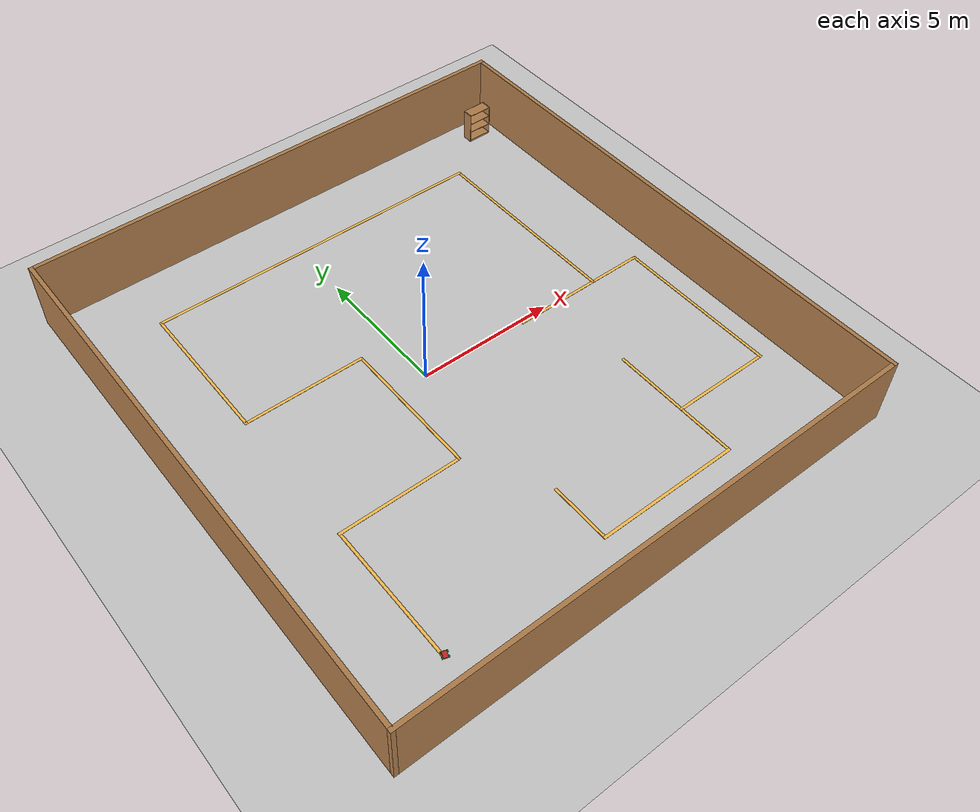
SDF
<sdf version="1.7">
 <world name="default">
  <light name="sun" type="directional">
   <pose>0 0 10 0 -0 0</pose>
   <diffuse>0.8 0.8 0.8 1</diffuse>
   <specular>0.2 0.2 0.2 1</specular>
   <attenuation>
    <range>1000</range>
    <constant>0.9</constant>
    <linear>0.01</linear>
    <quadratic>0.001</quadratic>
   </attenuation>
   <direction>-0.5 0.1 -0.9</direction>
   <spot><inner_angle>0</inner_angle><outer_angle>0</outer_angle><falloff>0</falloff></spot>
  </light>
  <model name="ground_plane">
   <static>1</static>
   <link name="link">
    <collision name="collision">
     <geometry><plane><normal>0 0 1</normal><size>100 100</size></plane></geometry>
     <surface><friction><ode><mu>100</mu><mu2>50</mu2></ode></friction></surface>
    </collision>
    <visual name="visual">
     <cast_shadows>0</cast_shadows>
     <geometry><plane><normal>0 0 1</normal><size>100 100</size></plane></geometry>
     <material>
      <script><uri>file://media/materials/scripts/gazebo.material</uri><name>Gazebo/Grey</name></script>
     </material>
    </visual>
   </link>
  </model>
  <gravity>0 0 -9.8</gravity>
  <magnetic_field>6e-06 2.3e-05 -4.2e-05</magnetic_field>
  <atmosphere type="adiabatic"/>
  <physics type="ode">
   <max_step_size>0.001</max_step_size>
   <real_time_factor>1</real_time_factor>
   <real_time_update_rate>1000</real_time_update_rate>
  </physics>
  <scene><ambient>0.4 0.4 0.4 1</ambient><background>0.7 0.7 0.7 1</background><shadows>1</shadows></scene>
  <audio><device>default</device></audio>
  <spherical_coordinates>
   <surface_model>EARTH_WGS84</surface_model>
   <latitude_deg>0</latitude_deg>
   <longitude_deg>0</longitude_deg>
   <elevation>0</elevation>
   <heading_deg>0</heading_deg>
  </spherical_coordinates>
  <model name="world">
   <pose>0.75234 -0.14285 0 0 -0 0</pose>
   <link name="Wall_30">
    <collision name="Wall_30_Collision">
     <geometry><box><size>19.5 0.15 2.5</size></box></geometry>
     <pose>0 0 1.25 0 -0 0</pose>
    </collision>
    <visual name="Wall_30_Visual">
     <pose>0 0 1.25 0 -0 0</pose>
     <geometry><box><size>19.5 0.15 2.5</size></box></geometry>
     <material>
      <script><uri>file://media/materials/scripts/gazebo.material</uri><name>Gazebo/Wood</name></script>
      <ambient>1 1 1 1</ambient>
     </material>
     <meta><layer>0</layer></meta>
    </visual>
    <pose>-9.175 0 0 0 -0 1.5708</pose>
   </link>
   <link name="Wall_31">
    <collision name="Wall_31_Collision">
     <geometry><box><size>18.5 0.15 2.5</size></box></geometry>
     <pose>0 0 1.25 0 -0 0</pose>
    </collision>
    <visual name="Wall_31_Visual">
     <pose>0 0 1.25 0 -0 0</pose>
     <geometry><box><size>18.5 0.15 2.5</size></box></geometry>
     <material>
      <script><uri>file://media/materials/scripts/gazebo.material</uri><name>Gazebo/Wood</name></script>
      <ambient>1 1 1 1</ambient>
     </material>
     <meta><layer>0</layer></meta>
    </visual>
    <pose>0 9.675 0 0 -0 0</pose>
   </link>
   <link name="Wall_32">
    <collision name="Wall_32_Collision">
     <geometry><box><size>19.5 0.15 2.5</size></box></geometry>
     <pose>0 0 1.25 0 -0 0</pose>
    </collision>
    <visual name="Wall_32_Visual">
     <pose>0 0 1.25 0 -0 0</pose>
     <geometry><box><size>19.5 0.15 2.5</size></box></geometry>
     <material>
      <script><uri>file://media/materials/scripts/gazebo.material</uri><name>Gazebo/Wood</name></script>
      <ambient>1 1 1 1</ambient>
     </material>
     <meta><layer>0</layer></meta>
    </visual>
    <pose>9.175 0 0 0 -0 -1.5708</pose>
   </link>
   <link name="Wall_33">
    <collision name="Wall_33_Collision">
     <geometry><box><size>18.5 0.15 2.5</size></box></geometry>
     <pose>0 0 1.25 0 -0 0</pose>
    </collision>
    <visual name="Wall_33_Visual">
     <pose>0 0 1.25 0 -0 0</pose>
     <geometry><box><size>18.5 0.15 2.5</size></box></geometry>
     <material>
      <script><uri>file://media/materials/scripts/gazebo.material</uri><name>Gazebo/Wood</name></script>
      <ambient>1 1 1 1</ambient>
     </material>
     <meta><layer>0</layer></meta>
    </visual>
    <pose>0 -9.675 0 0 -0 3.14159</pose>
   </link>
   <link name="Wall_35">
    <collision name="Wall_35_Collision">
     <geometry><box><size>4.94963 0.1 0.01</size></box></geometry>
     <pose>0 0 0.005 0 -0 0</pose>
    </collision>
    <visual name="Wall_35_Visual">
     <pose>0 0 0.005 0 -0 0</pose>
     <geometry><box><size>4.94963 0.1 0.01</size></box></geometry>
     <material>
      <script><uri>file://media/materials/scripts/gazebo.material</uri><name>Gazebo/Grey</name></script>
      <ambient>1 0.764706 0.305882 1</ambient>
     </material>
     <meta><layer>0</layer></meta>
    </visual>
    <pose>-6.28535 -5.50215 0 0 -0 1.5708</pose>
   </link>
   <link name="Wall_36">
    <collision name="Wall_36_Collision">
     <geometry><box><size>4.45 0.1 0.01</size></box></geometry>
     <pose>0 0 0.005 0 -0 0</pose>
    </collision>
    <visual name="Wall_36_Visual">
     <pose>0 0 0.005 0 -0 0</pose>
     <geometry><box><size>4.45 0.1 0.01</size></box></geometry>
     <material>
      <script><uri>file://media/materials/scripts/gazebo.material</uri><name>Gazebo/Grey</name></script>
      <ambient>1 0.764706 0.305882 1</ambient>
     </material>
     <meta><layer>0</layer></meta>
    </visual>
    <pose>-4.11034 -3.07715 0 0 -0 0</pose>
   </link>
   <link name="Wall_37">
    <collision name="Wall_37_Collision">
     <geometry><box><size>5.19963 0.1 0.01</size></box></geometry>
     <pose>0 0 0.005 0 -0 0</pose>
    </collision>
    <visual name="Wall_37_Visual">
     <pose>0 0 0.005 0 -0 0</pose>
     <geometry><box><size>5.19963 0.1 0.01</size></box></geometry>
     <material>
      <script><uri>file://media/materials/scripts/gazebo.material</uri><name>Gazebo/Grey</name></script>
      <ambient>1 0.764706 0.305882 1</ambient>
     </material>
     <meta><layer>0</layer></meta>
    </visual>
    <pose>-1.93535 -0.52715 0 0 -0 1.5708</pose>
   </link>
   <link name="Wall_38">
    <collision name="Wall_38_Collision">
     <geometry><box><size>4.44982 0.1 0.01</size></box></geometry>
     <pose>0 0 0.005 0 -0 0</pose>
    </collision>
    <visual name="Wall_38_Visual">
     <pose>0 0 0.005 0 -0 0</pose>
     <geometry><box><size>4.44982 0.1 0.01</size></box></geometry>
     <material>
      <script><uri>file://media/materials/scripts/gazebo.material</uri><name>Gazebo/Grey</name></script>
      <ambient>1 0.764706 0.305882 1</ambient>
     </material>
     <meta><layer>0</layer></meta>
    </visual>
    <pose>-4.11034 2.02285 0 0 -0 3.14159</pose>
   </link>
   <link name="Wall_39">
    <collision name="Wall_39_Collision">
     <geometry><box><size>5.44963 0.1 0.01</size></box></geometry>
     <pose>0 0 0.005 0 -0 0</pose>
    </collision>
    <visual name="Wall_39_Visual">
     <pose>0 0 0.005 0 -0 0</pose>
     <geometry><box><size>5.44963 0.1 0.01</size></box></geometry>
     <material>
      <script><uri>file://media/materials/scripts/gazebo.material</uri><name>Gazebo/Grey</name></script>
      <ambient>1 0.764706 0.305882 1</ambient>
     </material>
     <meta><layer>0</layer></meta>
    </visual>
    <pose>-6.28535 4.69785 0 0 -0 1.5708</pose>
   </link>
   <link name="Wall_40">
    <collision name="Wall_40_Collision">
     <geometry><box><size>12.7002 0.1 0.01</size></box></geometry>
     <pose>0 0 0.005 0 -0 0</pose>
    </collision>
    <visual name="Wall_40_Visual">
     <pose>0 0 0.005 0 -0 0</pose>
     <geometry><box><size>12.7002 0.1 0.01</size></box></geometry>
     <material>
      <script><uri>file://media/materials/scripts/gazebo.material</uri><name>Gazebo/Grey</name></script>
      <ambient>1 0.764706 0.305882 1</ambient>
     </material>
     <meta><layer>0</layer></meta>
    </visual>
    <pose>0.014655 7.37285 0 0 -0 0</pose>
   </link>
   <link name="Wall_41">
    <collision name="Wall_41_Collision">
     <geometry><box><size>7.41019 0.1 0.01</size></box></geometry>
     <pose>0 0 0.005 0 -0 0</pose>
    </collision>
    <visual name="Wall_41_Visual">
     <pose>0 0 0.005 0 -0 0</pose>
     <geometry><box><size>7.41019 0.1 0.01</size></box></geometry>
     <material>
      <script><uri>file://media/materials/scripts/gazebo.material</uri><name>Gazebo/Grey</name></script>
      <ambient>1 0.764706 0.305882 1</ambient>
     </material>
     <meta><layer>0</layer></meta>
    </visual>
    <pose>6.33462 3.71781 0 0 -0 -1.56533</pose>
   </link>
   <link name="Wall_44">
    <collision name="Wall_44_Collision">
     <geometry><box><size>5.95 0.1 0.01</size></box></geometry>
     <pose>0 0 0.005 0 -0 0</pose>
    </collision>
    <visual name="Wall_44_Visual">
     <pose>0 0 0.005 0 -0 0</pose>
     <geometry><box><size>5.95 0.1 0.01</size></box></geometry>
     <material>
      <script><uri>file://media/materials/scripts/gazebo.material</uri><name>Gazebo/Grey</name></script>
      <ambient>1 0.764706 0.305882 1</ambient>
     </material>
     <meta><layer>0</layer></meta>
    </visual>
    <pose>8.31466 -2.90215 0 0 -0 -1.5708</pose>
   </link>
   <link name="Wall_45">
    <collision name="Wall_45_Collision">
     <geometry><box><size>3.69982 0.1 0.01</size></box></geometry>
     <pose>0 0 0.005 0 -0 0</pose>
    </collision>
    <visual name="Wall_45_Visual">
     <pose>0 0 0.005 0 -0 0</pose>
     <geometry><box><size>3.69982 0.1 0.01</size></box></geometry>
     <material>
      <script><uri>file://media/materials/scripts/gazebo.material</uri><name>Gazebo/Grey</name></script>
      <ambient>1 0.764706 0.305882 1</ambient>
     </material>
     <meta><layer>0</layer></meta>
    </visual>
    <pose>6.51466 -5.82715 0 0 -0 3.14159</pose>
   </link>
   <link name="Wall_46">
    <collision name="Wall_46_Collision">
     <geometry><box><size>2.7 0.1 0.01</size></box></geometry>
     <pose>0 0 0.005 0 -0 0</pose>
    </collision>
    <visual name="Wall_46_Visual">
     <pose>0 0 0.005 0 -0 0</pose>
     <geometry><box><size>2.7 0.1 0.01</size></box></geometry>
     <material>
      <script><uri>file://media/materials/scripts/gazebo.material</uri><name>Gazebo/Grey</name></script>
      <ambient>1 0.764706 0.305882 1</ambient>
     </material>
     <meta><layer>0</layer></meta>
    </visual>
    <pose>4.71465 -4.52715 0 0 -0 1.5708</pose>
   </link>
   <link name="Wall_47">
    <collision name="Wall_47_Collision">
     <geometry><box><size>4.70037 0.1 0.01</size></box></geometry>
     <pose>0 0 0.005 0 -0 0</pose>
    </collision>
    <visual name="Wall_47_Visual">
     <pose>0 0 0.005 0 -0 0</pose>
     <geometry><box><size>4.70037 0.1 0.01</size></box></geometry>
     <material>
      <script><uri>file://media/materials/scripts/gazebo.material</uri><name>Gazebo/Grey</name></script>
      <ambient>1 0.764706 0.305882 1</ambient>
     </material>
     <meta><layer>0</layer></meta>
    </visual>
    <pose>4.71465 -5.52715 0 0 -0 -1.5708</pose>
   </link>
   <link name="Wall_48">
    <collision name="Wall_48_Collision">
     <geometry><box><size>5.19982 0.1 0.01</size></box></geometry>
     <pose>0 0 0.005 0 -0 0</pose>
    </collision>
    <visual name="Wall_48_Visual">
     <pose>0 0 0.005 0 -0 0</pose>
     <geometry><box><size>5.19982 0.1 0.01</size></box></geometry>
     <material>
      <script><uri>file://media/materials/scripts/gazebo.material</uri><name>Gazebo/Grey</name></script>
      <ambient>1 0.764706 0.305882 1</ambient>
     </material>
     <meta><layer>0</layer></meta>
    </visual>
    <pose>2.16466 -7.82715 0 0 -0 3.14159</pose>
   </link>
   <link name="Wall_49">
    <collision name="Wall_49_Collision">
     <geometry><box><size>2.19963 0.1 0.01</size></box></geometry>
     <pose>0 0 0.005 0 -0 0</pose>
    </collision>
    <visual name="Wall_49_Visual">
     <pose>0 0 0.005 0 -0 0</pose>
     <geometry><box><size>2.19963 0.1 0.01</size></box></geometry>
     <material>
      <script><uri>file://media/materials/scripts/gazebo.material</uri><name>Gazebo/Grey</name></script>
      <ambient>1 0.764706 0.305882 1</ambient>
     </material>
     <meta><layer>0</layer></meta>
    </visual>
    <pose>-0.385345 -6.77715 0 0 -0 1.5708</pose>
   </link>
   <link name="Wall_60">
    <collision name="Wall_60_Collision">
     <geometry><box><size>5.2 0.1 0.01</size></box></geometry>
     <pose>0 0 0.005 0 -0 0</pose>
    </collision>
    <visual name="Wall_60_Visual">
     <pose>0 0 0.005 0 -0 0</pose>
     <geometry><box><size>5.2 0.1 0.01</size></box></geometry>
     <material>
      <script><uri>file://media/materials/scripts/gazebo.material</uri><name>Gazebo/Grey</name></script>
      <ambient>1 0.764706 0.305882 1</ambient>
     </material>
     <meta><layer>0</layer></meta>
    </visual>
    <pose>5.76466 0.02285 0 0 -0 3.14159</pose>
   </link>
   <static>1</static>
  </model>
  <model name="arm_1dof">
   <link name="chassis">
    <inertial>
     <pose>0.001961 0 0.000588 0 -0 0</pose>
     <mass>0.51</mass>
     <inertia>
      <ixx>0.00105882</ixx>
      <ixy>0</ixy>
      <ixz>-2.94118e-05</ixz>
      <iyy>0.00271936</iyy>
      <iyz>0</iyz>
      <izz>0.00187721</izz>
     </inertia>
    </inertial>
    <collision name="chassis_collision_collision">
     <geometry><box><size>0.2 0.15 0.05</size></box></geometry>
    </collision>
    <collision name="chassis_fixed_joint_lump__camera_link_collision_collision_1">
     <pose>0.1 0 0.03 0 -0 0</pose>
     <geometry><box><size>0.02 0.02 0.01</size></box></geometry>
    </collision>
    <visual name="chassis_visual_visual">
     <geometry><box><size>0.2 0.15 0.05</size></box></geometry>
     <material>
      <script><name>Gazebo/Red</name><uri>file://media/materials/scripts/gazebo.material</uri></script>
     </material>
    </visual>
    <visual name="chassis_fixed_joint_lump__camera_link_visual_visual_1">
     <pose>0.1 0 0.03 0 -0 0</pose>
     <geometry><box><size>0.02 0.02 0.01</size></box></geometry>
    </visual>
    <sensor name="camera1" type="camera">
     <update_rate>30</update_rate>
     <camera name="head">
      <horizontal_fov>1.39626</horizontal_fov>
      <image><width>800</width><height>800</height><format>R8G8B8</format></image>
      <clip><near>0.02</near><far>300</far></clip>
      <noise><type>gaussian</type><mean>0</mean><stddev>0.007</stddev></noise>
     </camera>
     <plugin name="camera_controller" filename="libgazebo_ros_camera.so">
      <alwaysOn>1</alwaysOn>
      <updateRate>0.0</updateRate>
      <cameraName>robot/camera</cameraName>
      <imageTopicName>image_raw</imageTopicName>
      <cameraInfoTopicName>camera_info</cameraInfoTopicName>
      <frameName>camera_link</frameName>
      <hackBaseline>0.07</hackBaseline>
      <distortionK1>0.0</distortionK1>
      <distortionK2>0.0</distortionK2>
      <distortionK3>0.0</distortionK3>
      <distortionT1>0.0</distortionT1>
      <distortionT2>0.0</distortionT2>
     </plugin>
     <pose>0.1 0 0.03 0 -0 0</pose>
    </sensor>
   </link>
   <joint name="wheel_FL_joint" type="revolute">
    <pose relative_to="chassis">0.075 0.08 0 0 -0 0</pose>
    <parent>chassis</parent>
    <child>wheel_FL</child>
    <axis>
     <xyz>0 1 0</xyz>
     <limit><lower>-1e+16</lower><upper>1e+16</upper></limit>
     <dynamics><spring_reference>0</spring_reference><spring_stiffness>0</spring_stiffness></dynamics>
    </axis>
   </joint>
   <link name="wheel_FL">
    <pose relative_to="wheel_FL_joint">0 0 0 0 -0 0</pose>
    <inertial>
     <mass>0.025</mass>
     <inertia>
      <ixx>0.000166667</ixx>
      <ixy>0</ixy>
      <ixz>0</ixz>
      <iyy>0.000166667</iyy>
      <iyz>0</iyz>
      <izz>0.000166667</izz>
     </inertia>
    </inertial>
    <collision name="wheel_FL_collision_collision">
     <pose>0 0.015 0 1.5708 -0 0</pose>
     <geometry><cylinder><length>0.03</length><radius>0.04</radius></cylinder></geometry>
    </collision>
    <visual name="wheel_FL_visual_visual">
     <pose>0 0.015 0 1.5708 -0 0</pose>
     <geometry><cylinder><length>0.03</length><radius>0.04</radius></cylinder></geometry>
     <material>
      <script><name>Gazebo/Green</name><uri>file://media/materials/scripts/gazebo.material</uri></script>
     </material>
    </visual>
   </link>
   <joint name="wheel_FR_joint" type="revolute">
    <pose relative_to="chassis">0.075 -0.08 0 0 -0 0</pose>
    <parent>chassis</parent>
    <child>wheel_FR</child>
    <axis>
     <xyz>0 1 0</xyz>
     <limit><lower>-1e+16</lower><upper>1e+16</upper></limit>
     <dynamics><spring_reference>0</spring_reference><spring_stiffness>0</spring_stiffness></dynamics>
    </axis>
   </joint>
   <link name="wheel_FR">
    <pose relative_to="wheel_FR_joint">0 0 0 0 -0 0</pose>
    <inertial>
     <mass>0.025</mass>
     <inertia>
      <ixx>0.000166667</ixx>
      <ixy>0</ixy>
      <ixz>0</ixz>
      <iyy>0.000166667</iyy>
      <iyz>0</iyz>
      <izz>0.000166667</izz>
     </inertia>
    </inertial>
    <collision name="wheel_FR_collision_collision">
     <pose>0 -0.015 0 1.5708 -0 0</pose>
     <geometry><cylinder><length>0.03</length><radius>0.04</radius></cylinder></geometry>
    </collision>
    <visual name="wheel_FR_visual_visual">
     <pose>0 -0.015 0 1.5708 -0 0</pose>
     <geometry><cylinder><length>0.03</length><radius>0.04</radius></cylinder></geometry>
     <material>
      <script><name>Gazebo/Green</name><uri>file://media/materials/scripts/gazebo.material</uri></script>
     </material>
    </visual>
   </link>
   <joint name="wheel_RL_joint" type="revolute">
    <pose relative_to="chassis">-0.075 0.08 0 0 -0 0</pose>
    <parent>chassis</parent>
    <child>wheel_RL</child>
    <axis>
     <xyz>0 1 0</xyz>
     <limit><lower>-1e+16</lower><upper>1e+16</upper></limit>
     <dynamics><spring_reference>0</spring_reference><spring_stiffness>0</spring_stiffness></dynamics>
    </axis>
   </joint>
   <link name="wheel_RL">
    <pose relative_to="wheel_RL_joint">0 0 0 0 -0 0</pose>
    <inertial>
     <mass>0.025</mass>
     <inertia>
      <ixx>0.000166667</ixx>
      <ixy>0</ixy>
      <ixz>0</ixz>
      <iyy>0.000166667</iyy>
      <iyz>0</iyz>
      <izz>0.000166667</izz>
     </inertia>
    </inertial>
    <collision name="wheel_RL_collision_collision">
     <pose>0 0.015 0 1.5708 -0 0</pose>
     <geometry><cylinder><length>0.03</length><radius>0.04</radius></cylinder></geometry>
    </collision>
    <visual name="wheel_RL_visual_visual">
     <pose>0 0.015 0 1.5708 -0 0</pose>
     <geometry><cylinder><length>0.03</length><radius>0.04</radius></cylinder></geometry>
     <material>
      <script><name>Gazebo/Green</name><uri>file://media/materials/scripts/gazebo.material</uri></script>
     </material>
    </visual>
   </link>
   <joint name="wheel_RR_joint" type="revolute">
    <pose relative_to="chassis">-0.075 -0.08 0 0 -0 0</pose>
    <parent>chassis</parent>
    <child>wheel_RR</child>
    <axis>
     <xyz>0 1 0</xyz>
     <limit><lower>-1e+16</lower><upper>1e+16</upper></limit>
     <dynamics><spring_reference>0</spring_reference><spring_stiffness>0</spring_stiffness></dynamics>
    </axis>
   </joint>
   <link name="wheel_RR">
    <pose relative_to="wheel_RR_joint">0 0 0 0 -0 0</pose>
    <inertial>
     <mass>0.025</mass>
     <inertia>
      <ixx>0.000166667</ixx>
      <ixy>0</ixy>
      <ixz>0</ixz>
      <iyy>0.000166667</iyy>
      <iyz>0</iyz>
      <izz>0.000166667</izz>
     </inertia>
    </inertial>
    <collision name="wheel_RR_collision_collision">
     <pose>0 -0.015 0 1.5708 -0 0</pose>
     <geometry><cylinder><length>0.03</length><radius>0.04</radius></cylinder></geometry>
    </collision>
    <visual name="wheel_RR_visual_visual">
     <pose>0 -0.015 0 1.5708 -0 0</pose>
     <geometry><cylinder><length>0.03</length><radius>0.04</radius></cylinder></geometry>
     <material>
      <script><name>Gazebo/Green</name><uri>file://media/materials/scripts/gazebo.material</uri></script>
     </material>
    </visual>
   </link>
   <static>0</static>
   <plugin name="skid_steer_drive" filename="libgazebo_ros_diff_drive.so">
    <update_rate>100.0</update_rate>
    <num_wheel_pairs>2</num_wheel_pairs>
    <left_joint>wheel_FL_joint</left_joint>
    <right_joint>wheel_FR_joint</right_joint>
    <left_joint>wheel_RL_joint</left_joint>
    <right_joint>wheel_RR_joint</right_joint>
    <wheel_separation>0.15</wheel_separation>
    <wheel_separation>0.15</wheel_separation>
    <wheel_diameter>0.08</wheel_diameter>
    <wheel_diameter>0.08</wheel_diameter>
    <robot_base_frame>chassis</robot_base_frame>
    <max_wheel_torque>200</max_wheel_torque>
    <max_wheel_acceleration>10.0</max_wheel_acceleration>
    <publish_odom>1</publish_odom>
    <publish_odom_tf>1</publish_odom_tf>
    <publish_wheel_tf>1</publish_wheel_tf>
    <odometry_frame>cmd_vel</odometry_frame>
   </plugin>
   <pose>-5.49225 -8.06398 0.044995 2.3e-05 -0.066685 1.2287</pose>
  </model>
  <model name="bookshelf">
   <static>1</static>
   <link name="link">
    <inertial><mass>1</mass></inertial>
    <collision name="back">
     <pose>0 0.005 0.6 0 -0 0</pose>
     <geometry><box><size>0.9 0.01 1.2</size></box></geometry>
    </collision>
    <visual name="visual1">
     <pose>0 0.005 0.6 0 -0 0</pose>
     <geometry><box><size>0.9 0.01 1.2</size></box></geometry>
     <material>
      <script><uri>file://media/materials/scripts/gazebo.material</uri><name>Gazebo/Wood</name></script>
     </material>
    </visual>
    <collision name="left_side">
     <pose>0.45 -0.195 0.6 0 -0 0</pose>
     <geometry><box><size>0.02 0.4 1.2</size></box></geometry>
    </collision>
    <visual name="visual2">
     <pose>0.45 -0.195 0.6 0 -0 0</pose>
     <geometry><box><size>0.02 0.4 1.2</size></box></geometry>
     <material>
      <script><uri>file://media/materials/scripts/gazebo.material</uri><name>Gazebo/Wood</name></script>
     </material>
    </visual>
    <collision name="right_side">
     <pose>-0.45 -0.195 0.6 0 -0 0</pose>
     <geometry><box><size>0.02 0.4 1.2</size></box></geometry>
    </collision>
    <visual name="visual3">
     <pose>-0.45 -0.195 0.6 0 -0 0</pose>
     <geometry><box><size>0.02 0.4 1.2</size></box></geometry>
     <material>
      <script><uri>file://media/materials/scripts/gazebo.material</uri><name>Gazebo/Wood</name></script>
     </material>
    </visual>
    <collision name="bottom">
     <pose>0 -0.195 0.03 0 -0 0</pose>
     <geometry><box><size>0.88 0.4 0.06</size></box></geometry>
    </collision>
    <visual name="visual4">
     <pose>0 -0.195 0.03 0 -0 0</pose>
     <geometry><box><size>0.88 0.4 0.06</size></box></geometry>
     <material>
      <script><uri>file://media/materials/scripts/gazebo.material</uri><name>Gazebo/Wood</name></script>
     </material>
    </visual>
    <collision name="top">
     <pose>0 -0.195 1.19 0 -0 0</pose>
     <geometry><box><size>0.88 0.4 0.02</size></box></geometry>
    </collision>
    <visual name="visual5">
     <pose>0 -0.195 1.19 0 -0 0</pose>
     <geometry><box><size>0.88 0.4 0.02</size></box></geometry>
     <material>
      <script><uri>file://media/materials/scripts/gazebo.material</uri><name>Gazebo/Wood</name></script>
     </material>
    </visual>
    <collision name="low_shelf">
     <pose>0 -0.195 0.43 0 -0 0</pose>
     <geometry><box><size>0.88 0.4 0.02</size></box></geometry>
    </collision>
    <visual name="visual6">
     <pose>0 -0.195 0.43 0 -0 0</pose>
     <geometry><box><size>0.88 0.4 0.02</size></box></geometry>
     <material>
      <script><uri>file://media/materials/scripts/gazebo.material</uri><name>Gazebo/Wood</name></script>
     </material>
    </visual>
    <collision name="high_shelf">
     <pose>0 -0.195 0.8 0 -0 0</pose>
     <geometry><box><size>0.88 0.4 0.02</size></box></geometry>
    </collision>
    <visual name="visual7">
     <pose>0 -0.195 0.8 0 -0 0</pose>
     <geometry><box><size>0.88 0.4 0.02</size></box></geometry>
     <material>
      <script><uri>file://media/materials/scripts/gazebo.material</uri><name>Gazebo/Wood</name></script>
     </material>
    </visual>
   </link>
   <pose>9.03365 8.84221 0 0 -0 0</pose>
  </model>
 </world>
</sdf>
